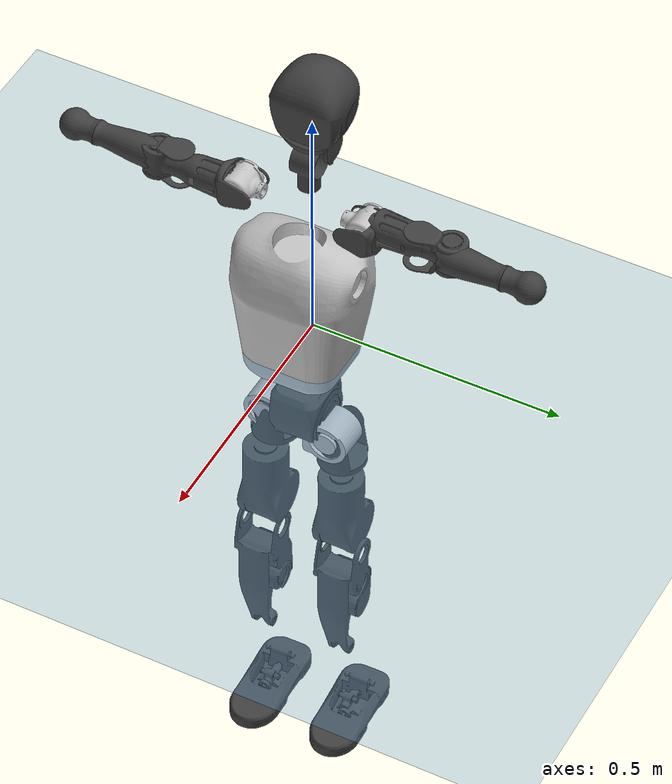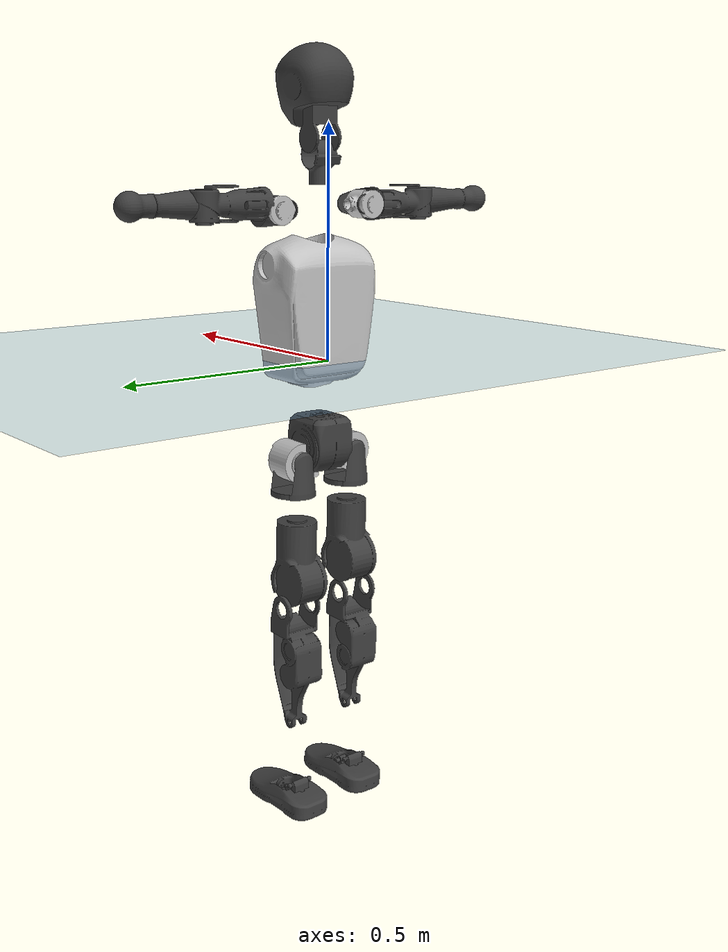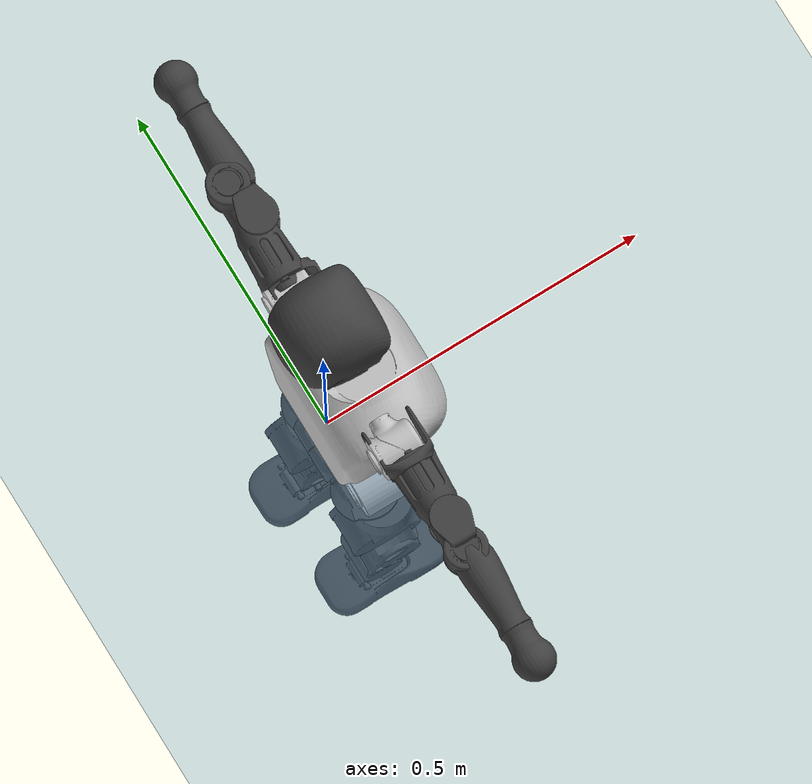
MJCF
<mujoco model="T1">
  <compiler angle="radian" assetdir="assets" balanceinertia="true" inertiafromgeom="false"/>

  <option timestep="0.005" density="1.2" viscosity="2e-05"/>

  <size nkey="1"/>

  <visual>
    <quality shadowsize="8192"/>
    <map shadowclip="0.5"/>
  </visual>

  <default>
    <default class="/">
      <joint armature="0.01" damping="0.01" frictionloss="0.1"/>
      <geom contype="0" conaffinity="0" group="1" solref="-1000 -80"/>
      <site size="0.01 0.005 0.005" group="5"/>
      <general forcelimited="true" biastype="affine" gainprm="25" biasprm="0 -25 -0.6"/>
      <default class="t1">
        <geom rgba="0.25 0.25 0.25 1"/>
        <default class="visual">
          <geom type="mesh" group="2"/>
        </default>
        <default class="collision">
          <geom group="3"/>
        </default>
        <default class="foot">
          <geom size="0.1115 0.05 0.015" type="box" condim="6" group="4" priority="1" solimp="0.015 1 0.015"/>
        </default>
        <default class="reward_collision_sphere">
          <geom group="5" rgba="1 0 0 1"/>
        </default>
      </default>
    </default>
  </default>

  <asset>
    <texture type="skybox" colorspace="auto" name="//unnamed_texture_0" builtin="gradient" rgb1="0.95 0.95 0.95" rgb2="0.95 0.95 0.95" width="100" height="600"/>
    <texture type="2d" colorspace="auto" name="texplane" builtin="checker" rgb1="0.345 0.575 0.748" rgb2="0.345 0.575 0.748" markrgb="1 1 1" width="512" height="512"/>
    <material name="MatPlane" class="/" texture="texplane" texuniform="true" texrepeat="2 2" specular="0.9"/>
    <mesh name="Trunk" class="/" file="Trunk.stl"/>
    <mesh name="H1" class="/" file="H1.stl"/>
    <mesh name="H2" class="/" file="H2.stl"/>
    <mesh name="AL1" class="/" file="AL1.stl"/>
    <mesh name="AL2" class="/" file="AL2.stl"/>
    <mesh name="AL3" class="/" file="AL3.stl"/>
    <mesh name="left_hand_link" class="/" file="left_hand_link.stl"/>
    <mesh name="AR1" class="/" file="AR1.stl"/>
    <mesh name="AR2" class="/" file="AR2.stl"/>
    <mesh name="AR3" class="/" file="AR3.stl"/>
    <mesh name="right_hand_link" class="/" file="right_hand_link.stl"/>
    <mesh name="Waist" class="/" file="Waist.stl"/>
    <mesh name="Hip_Pitch_Left" class="/" file="Hip_Pitch_Left.stl"/>
    <mesh name="Hip_Roll_Left" class="/" file="Hip_Roll_Left.stl"/>
    <mesh name="Hip_Yaw_Left" class="/" file="Hip_Yaw_Left.stl"/>
    <mesh name="Shank_Left" class="/" file="Shank_Left.stl"/>
    <mesh name="Ankle_Cross_Left" class="/" file="Ankle_Cross_Left.stl"/>
    <mesh name="left_foot_link" class="/" file="left_foot_link.stl"/>
    <mesh name="Hip_Pitch_Right" class="/" file="Hip_Pitch_Right.stl"/>
    <mesh name="Hip_Roll_Right" class="/" file="Hip_Roll_Right.stl"/>
    <mesh name="Hip_Yaw_Right" class="/" file="Hip_Yaw_Right.stl"/>
    <mesh name="Shank_Right" class="/" file="Shank_Right.stl"/>
    <mesh name="Ankle_Cross_Right" class="/" file="Ankle_Cross_Right.stl"/>
    <mesh name="right_foot_link" class="/" file="right_foot_link.stl"/>
  </asset>

  <worldbody>
    <geom name="floor" class="/" size="100 100 0.125" type="plane" group="0" material="MatPlane"/>
    <light name="toplight_shadow" class="/" pos="0 0 5" dir="0.0990148 0.0990148 -0.990148" type="directional" ambient="0.04 0.04 0.04" diffuse="0.55 0.55 0.55" specular="0.12 0.12 0.12"/>
    <light name="toplight_fill" class="/" pos="0 0 5" dir="0.0990148 0.0990148 -0.990148" type="directional" castshadow="false" ambient="0.04 0.04 0.04" diffuse="0.3 0.3 0.3" specular="0.08 0.08 0.08"/>
    <body name="trunk" childclass="t1" pos="-0.00176571 0.00341212 -0.0105506" quat="0.999994 -0.000290447 -0.00174763 -0.00295218">
      <inertial pos="0.0342796 0.00982364 0.156454" quat="0.999953 0.00108072 -0.00957733 0.000913618" mass="9.35411" diaginertia="0.0014403 0.012855 0.473253"/>
      <joint name="//unnamed_joint_0" type="free" armature="0" damping="0" frictionloss="0"/>
      <geom name="//unnamed_geom_1" class="visual" rgba="0.76 0.76 0.76 1" mesh="Trunk"/>
      <geom name="//unnamed_geom_2" class="collision" size="0.0673443 0.0897924 0.134689" pos="0.0269258 0 0.186545" type="box"/>
      <geom name="//unnamed_geom_3" class="reward_collision_sphere" size="0.103261" pos="0.0269258 0 0.155454"/>
      <geom name="//unnamed_geom_4" class="reward_collision_sphere" size="0.0134689" pos="0.0269258 0.0586901 0"/>
      <geom name="//unnamed_geom_5" class="reward_collision_sphere" size="0.0134689" pos="0.0269258 -0.0586901 0"/>
      <geom name="//unnamed_geom_6" class="reward_collision_sphere" size="0.0134689" pos="0.0269258 0.0738804 0.279817"/>
      <geom name="//unnamed_geom_7" class="reward_collision_sphere" size="0.0134689" pos="0.0269258 -0.0738804 0.279817"/>
      <site name="imu" pos="0.0738428 -0.0758861 0.0726849" size="0.00897924"/>
      <camera name="track" pos="0 -1.38094 0" quat="0.707107 0.707107 0 0" mode="trackcom"/>
      <camera name="ego_camera" pos="0.054749 0 0.652906" quat="-0.5 -0.5 0.5 0.5"/>
      <body name="H1" pos="0.0279028 0.00343602 0.383606" quat="0.999974 -0.00553582 -0.00400932 -0.00232768">
        <inertial pos="-0.000910043 -0.004297 0.0827323" quat="0.770293 -0.0282465 -0.000702451 0.637063" mass="0.215235" diaginertia="4.21218e-06 2.7074e-05 0.00113127"/>
        <joint name="AAHead_yaw" pos="0 0 0" axis="0.0209349 0.041335 0.998926" stiffness="0.0223323" range="-1.63318 1.58492" armature="0.00161799" damping="0.0604282" frictionloss="0.0877508"/>
        <geom name="//unnamed_geom_8" class="visual" mesh="H1"/>
        <body name="H2" pos="-0.0165173 0.00945073 0.0962634" quat="0.999991 -0.00172027 -0.00354325 0.00161281">
          <inertial pos="0.00342795 -0.00343706 0.155123" quat="0.98532 0.123066 -0.0844793 -0.0828398" mass="0.488054" diaginertia="3.66157e-05 0.000308604 0.0138873"/>
          <joint name="Head_pitch" pos="0 0 0" axis="0.0175649 -0.998523 -0.0514195" range="-1.137 0.541929" armature="0.0064073" damping="0.0411365" frictionloss="0.104019"/>
          <geom name="//unnamed_geom_9" class="visual" mesh="H2"/>
          <geom name="//unnamed_geom_10" class="collision" size="0.0718339" pos="0.00448763 0 0.170999"/>
          <geom name="//unnamed_geom_11" class="reward_collision_sphere" size="0.0808131" pos="0.00897525 0 0.155454"/>
        </body>
      </body>
      <body name="AL1" pos="0.0261958 0.0729732 0.334636" quat="0.999984 -0.00361339 -0.00281523 -0.00326545">
        <inertial pos="0.000168233 0.0182227 0.000166857" quat="0.511611 0.490221 -0.491433 0.506391" mass="0.376555" diaginertia="2.19971e-05 0.000222112 0.00291515"/>
        <joint name="Left_Shoulder_Pitch" pos="0 0 0" axis="-0.00275928 0.999988 0.00406494" stiffness="0.0342106" range="-3.45651 1.27693" armature="0.0113558" damping="0" frictionloss="0.13494"/>
        <geom name="//unnamed_geom_12" class="visual" rgba="0.76 0.76 0.76 1" mesh="AL1"/>
        <body name="AL2" pos="0.0124719 0.0239279 0.000100945" quat="1 0.000223158 5.82876e-05 -2.99136e-05">
          <inertial pos="0.00028575 0.0315115 -0.0134812" quat="0.483615 0.517239 -0.490366 0.508057" mass="0.0836628" diaginertia="6.31751e-06 5.51459e-05 0.00123791"/>
          <joint name="Left_Shoulder_Roll" pos="0 0 0" axis="-0.999393 -0.0284841 0.0200593" range="-1.86366 1.45169" armature="0.0148922" damping="0.055829" frictionloss="0.0938034"/>
          <geom name="//unnamed_geom_13" class="visual" mesh="AL2"/>
          <body name="AL3" pos="-0.0101805 0.0434576 0.0130868" quat="0.999999 0.000878187 -0.00141799 0.000114874">
            <inertial pos="-0.010254 0.0589465 -0.00108202" quat="0.709831 0.703128 -0.00626782 0.0413734" mass="0.831938" diaginertia="0.000287889 0.00189123 0.00727402"/>
            <joint name="Left_Elbow_Pitch" pos="0 0 0" axis="-0.077863 -0.996858 -0.0145503" stiffness="0.0766894" range="-2.56586 2.02293" armature="0.016287" damping="0.0902477" frictionloss="0.139559"/>
            <geom name="//unnamed_geom_14" class="visual" mesh="AL3"/>
            <geom name="//unnamed_geom_15" class="collision" size="0.0269377 0.0673443" pos="0 0.0345236 0" quat="0.707105 0.707108 0 0" type="cylinder"/>
            <geom name="//unnamed_geom_16" class="reward_collision_sphere" size="0.0323253"/>
            <body name="left_hand_link" pos="0.0123093 0.0899448 0.00202096" quat="0.999992 0.00239365 0.00295238 -0.00141901">
              <inertial pos="0.00360848 0.0719445 -0.00820118" quat="0.706402 0.707809 -0.00175858 -0.000154908" mass="0.235654" diaginertia="0.000128496 0.00109534 0.00197349"/>
              <joint name="Left_Elbow_Yaw" pos="0 0 0" axis="-0.0386737 -0.0349857 0.998639" stiffness="0.027149" range="-2.27433 -0.0442409" armature="0.00172504" damping="0" frictionloss="0.132284"/>
              <geom name="//unnamed_geom_17" class="visual" mesh="left_hand_link"/>
              <geom name="//unnamed_geom_18" class="collision" size="0.0269377 0.0785683" pos="0 0.0897613 0" quat="0.707105 0.707108 0 0" type="cylinder"/>
              <geom name="//unnamed_geom_19" class="reward_collision_sphere" size="0.0448962"/>
              <geom name="//unnamed_geom_20" class="reward_collision_sphere" size="0.0314273" pos="0 0.0759518 0"/>
              <geom name="//unnamed_geom_21" class="reward_collision_sphere" size="0.0314273" pos="0 0.148451 0"/>
            </body>
          </body>
        </body>
      </body>
      <body name="AR1" pos="0.0385129 -0.0823969 0.339888" quat="0.999999 0.0006762 0.00119032 -0.000742194">
        <inertial pos="0.0139754 -0.0383098 -0.011128" quat="0.471879 0.47396 -0.570848 0.476261" mass="0.335813" diaginertia="2.70354e-05 0.000220836 0.00212603"/>
        <joint name="Right_Shoulder_Pitch" pos="0 0 0" axis="0.0016339 -0.999998 0.000927985" range="-1.21393 3.32443" armature="0.00895876" damping="0" frictionloss="0.139148"/>
        <geom name="//unnamed_geom_22" class="visual" rgba="0.76 0.76 0.76 1" mesh="AR1"/>
        <body name="AR2" pos="0.00553984 -0.0259117 0.000818237" quat="0.999995 -0.00231447 0.00133181 -0.00173964">
          <inertial pos="-0.00409043 -0.0296664 -0.00801307" quat="0.509485 0.491678 -0.511135 0.487256" mass="0.11856" diaginertia="7.05937e-06 4.47799e-05 0.00141128"/>
          <joint name="Right_Shoulder_Roll" pos="0 0 0" axis="-0.999358 -0.0351454 0.00701496" stiffness="0.015708" range="-1.91456 1.26648" armature="0.0136249" damping="0" frictionloss="0.0729406"/>
          <geom name="//unnamed_geom_23" class="visual" mesh="AR2"/>
          <body name="AR3" pos="0.00270727 -0.0380018 -0.00289618" quat="1 -4.83054e-06 -0.000141325 -0.000425381">
            <inertial pos="-0.00130337 -0.0444491 -0.0121224" quat="0.694301 0.717673 0.010477 0.0527463" mass="0.691999" diaginertia="0.000209636 0.00229553 0.00480001"/>
            <joint name="Right_Elbow_Pitch" pos="0 0 0" axis="0.0384527 0.999178 -0.0128695" range="-2.46475 2.49683" armature="0.00830387" damping="0" frictionloss="0.0936586"/>
            <geom name="//unnamed_geom_24" class="visual" mesh="AR3"/>
            <geom name="//unnamed_geom_25" class="collision" size="0.0269377 0.0673443" pos="0 -0.0345236 0" quat="0.707105 0.707108 0 0" type="cylinder"/>
            <geom name="//unnamed_geom_26" class="reward_collision_sphere" size="0.0323253"/>
            <body name="right_hand_link" pos="0.00312315 -0.101397 0.00492478" quat="0.999992 0.000543412 0.00342838 -0.00182439">
              <inertial pos="-0.000544056 -0.0719073 0.0133133" quat="0.71242 0.70168 0.00971513 -0.00293328" mass="0.258523" diaginertia="0.000139926 0.00128093 0.00223537"/>
              <joint name="Right_Elbow_Yaw" pos="0 0 0" axis="0.0122035 0.00931013 0.999882" range="-0.069727 2.43433" armature="0.00838962" damping="0.033958" frictionloss="0.042206"/>
              <geom name="//unnamed_geom_27" class="visual" mesh="right_hand_link"/>
              <geom name="//unnamed_geom_28" class="collision" size="0.0269377 0.0785683" pos="0 -0.0897613 0" quat="0.707105 0.707108 0 0" type="cylinder"/>
              <geom name="//unnamed_geom_29" class="reward_collision_sphere" size="0.0448962"/>
              <geom name="//unnamed_geom_30" class="reward_collision_sphere" size="0.0314273" pos="0 -0.0759518 0"/>
              <geom name="//unnamed_geom_31" class="reward_collision_sphere" size="0.0314273" pos="0 -0.148451 0"/>
            </body>
          </body>
        </body>
      </body>
      <body name="Waist" pos="0.0291938 -0.0035771 -0.17928" quat="0.999989 0.0039646 -0.00265185 0.00020426">
        <inertial pos="0.018021 -0.0112654 0.0107346" quat="0.984559 -0.00815756 -0.174444 0.0120637" mass="2.1703" diaginertia="0.00012629 0.00095962 0.0416416"/>
        <joint name="Waist" pos="0 0 0" axis="0.00366421 0.0752697 0.997156" range="-1.69875 1.70337" armature="0.0126904" damping="0" frictionloss="0.0919682"/>
        <geom name="//unnamed_geom_32" class="visual" mesh="Waist"/>
        <body name="Hip_Pitch_Left" pos="0.0139084 0.0636724 -0.0110767" quat="0.999965 0.00350321 -0.000575129 -0.00759025">
          <inertial pos="0.012495 -0.019923 -0.0275142" quat="0.975343 0.219976 0.015551 0.00870504" mass="0.789218" diaginertia="3.87444e-05 0.000290619 0.0110189"/>
          <joint name="Left_Hip_Pitch" pos="0 0 0" axis="0.0231375 0.999282 -0.0300152" range="-1.69776 1.53576" armature="0.0148873" damping="0.0115301" frictionloss="0.0210462"/>
          <geom name="//unnamed_geom_33" class="visual" rgba="0.76 0.76 0.76 1" mesh="Hip_Pitch_Left"/>
          <body name="Hip_Roll_Left" pos="-0.016521 0.0110846 -0.0145373" quat="0.999966 -0.00220092 -0.000660973 0.00796621">
            <inertial pos="-0.00956053 0.00774427 -0.0690437" quat="0.709554 0.00742862 -0.00594776 0.704586" mass="0.292083" diaginertia="3.10381e-05 0.000214899 0.00437952"/>
            <joint name="Left_Hip_Roll" pos="0 0 0" axis="-0.999705 -0.0173902 0.0169752" range="-1.56825 0.175063" armature="0.00460774" damping="0" frictionloss="0.0936713"/>
            <geom name="//unnamed_geom_34" class="visual" mesh="Hip_Roll_Left"/>
            <geom name="//unnamed_geom_35" class="reward_collision_sphere" size="0.0493858"/>
            <body name="Hip_Yaw_Left" pos="-0.00821413 -0.00637202 -0.13632" quat="0.999997 -0.00229088 -0.00023059 0.000342552">
              <inertial pos="-0.00445864 -0.0165065 -0.153078" quat="0.67912 -0.0271126 -0.0186528 0.733289" mass="1.69437" diaginertia="0.000508934 0.00431407 0.0242045"/>
              <joint name="Left_Hip_Yaw" pos="0 0 0" axis="0.0310701 0.0121135 -0.999444" range="-1.00037 1.01652" armature="0.00906437" damping="0.0211538" frictionloss="0.0428007"/>
              <geom name="//unnamed_geom_36" class="visual" mesh="Hip_Yaw_Left"/>
              <geom name="//unnamed_geom_37" class="collision" size="0.0448962 0.0718339" type="cylinder"/>
              <body name="Shank_Left" pos="-0.00524714 0.00235463 -0.19847" quat="0.999981 -0.00484118 -0.000642721 0.00369581">
                <inertial pos="-0.00315643 0.0110826 -0.200801" quat="0.996431 0.0679354 -0.0134617 0.048251" mass="1.40077" diaginertia="0.000665369 0.00509719 0.0178186"/>
                <joint name="Left_Knee_Pitch" pos="0 0 0" axis="-0.0311302 0.999514 0.00189093" range="0.00400441 2.6014" armature="0.00319535" damping="0.0444243" frictionloss="0.0926981"/>
                <geom name="//unnamed_geom_38" class="visual" mesh="Shank_Left"/>
                <geom name="//unnamed_geom_39" class="collision" size="0.0448962 0.0673443" pos="0 0 -0.186545" type="cylinder"/>
                <geom name="//unnamed_geom_40" class="reward_collision_sphere" size="0.058365"/>
                <body name="Ankle_Cross_Left" pos="-0.00871726 0.0121203 -0.439359" quat="0.999992 -0.000291771 0.00283223 0.0026356">
                  <inertial pos="0.00213292 -0.000828634 -0.0188178" quat="0.48208 0.509672 0.54768 0.455939" mass="0.0553932" diaginertia="4.18896e-07 3.78343e-06 9.50574e-05"/>
                  <joint name="Left_Ankle_Pitch" pos="0 0 0" axis="0.00267353 0.999994 0.00241059" range="-0.569644 0.0509668" armature="0.00471756" damping="0.0882201" frictionloss="0.0459762"/>
                  <geom name="//unnamed_geom_41" class="visual" mesh="Ankle_Cross_Left"/>
                  <body name="left_foot_link" pos="0.00931645 0.00925794 -0.00520719" quat="0.999972 -9.83883e-05 0.00515414 0.00549384">
                    <inertial pos="0.00506426 -0.0046823 -0.0163737" quat="-0.0591691 0.612555 0.00705066 0.788179" mass="0.390844" diaginertia="4.25603e-05 0.000290144 0.0124761"/>
                    <joint name="Left_Ankle_Roll" pos="0 0 0" axis="-0.997833 0.0596805 -0.0277125" range="-0.47766 0.132123" armature="0.00790434" damping="0.00391774" frictionloss="0.013713"/>
                    <geom name="//unnamed_geom_42" class="visual" mesh="left_foot_link"/>
                    <geom name="left_foot" class="foot" size="0.0860701 0.0641582 0.00494255" pos="0.00448763 0 -0.0233181"/>
                    <geom name="//unnamed_geom_44" class="reward_collision_sphere" size="0.046692" pos="0.00448763 0 -0.0233181"/>
                    <geom name="//unnamed_geom_45" class="reward_collision_sphere" size="0.0269377" pos="0.0426324 -0.0158808 -0.0233181"/>
                    <geom name="//unnamed_geom_46" class="reward_collision_sphere" size="0.0269377" pos="-0.0314134 -0.0158808 -0.0233181"/>
                    <site name="left_foot" class="foot" pos="0.00448763 0 -0.0233181" size="0.00897924"/>
                  </body>
                </body>
              </body>
            </body>
          </body>
        </body>
        <body name="Hip_Pitch_Right" pos="0.00258541 -0.0696016 0.00173379" quat="0.999998 -0.00165782 -0.000136488 -0.000659111">
          <inertial pos="0.00786344 0.00497525 -0.019736" quat="0.973161 -0.211587 0.09037 -0.00473802" mass="0.968091" diaginertia="3.90102e-05 0.000245095 0.0147354"/>
          <joint name="Right_Hip_Pitch" pos="0 0 0" axis="0.0246762 -0.999678 0.005948" range="-1.61141 1.98268" armature="0.00505025" damping="0" frictionloss="0.0886739"/>
          <geom name="//unnamed_geom_47" class="visual" rgba="0.76 0.76 0.76 1" mesh="Hip_Pitch_Right"/>
          <body name="Hip_Roll_Right" pos="-0.00945788 0.00293818 -0.0169955" quat="0.999998 -0.00105575 0.000953399 0.00131286">
            <inertial pos="0.00376726 -0.0105928 -0.0833923" quat="0.694127 0.00798327 0.0475308 0.718237" mass="0.300642" diaginertia="2.91451e-05 0.00021787 0.00510784"/>
            <joint name="Right_Hip_Roll" pos="0 0 0" axis="-0.999657 0.0184046 -0.0186323" stiffness="0.0833234" range="-0.11602 1.56726" armature="0.0136552" damping="0.00403486" frictionloss="0.089754"/>
            <geom name="//unnamed_geom_48" class="visual" mesh="Hip_Roll_Right"/>
            <geom name="//unnamed_geom_49" class="reward_collision_sphere" size="0.0493858"/>
            <body name="Hip_Yaw_Right" pos="0.0134144 -0.0161459 -0.123593" quat="1 -0.000327404 0.000346078 0.000198198">
              <inertial pos="0.00869552 6.92906e-05 -0.123097" quat="0.755748 -0.039455 -0.0269296 0.653118" mass="1.24385" diaginertia="0.000435266 0.00360878 0.0213684"/>
              <joint name="Right_Hip_Yaw" pos="0 0 0" axis="-0.0202204 -0.00107583 -0.999795" stiffness="0.0304944" range="-1.27118 1.18934" armature="0.00765156" damping="0.0297596" frictionloss="0.0859545"/>
              <geom name="//unnamed_geom_50" class="visual" mesh="Hip_Yaw_Right"/>
              <geom name="//unnamed_geom_51" class="collision" size="0.0448962 0.0718339" type="cylinder"/>
              <body name="Shank_Right" pos="-0.0103273 -0.0115758 -0.219726" quat="1 -1.0028e-05 3.66436e-06 -4.78392e-05">
                <inertial pos="-0.0195398 -0.00378189 -0.182815" quat="0.999219 0.0352872 0.0175461 0.00279505" mass="1.70768" diaginertia="0.0007463 0.00530075 0.020482"/>
                <joint name="Right_Knee_Pitch" pos="0 0 0" axis="-0.0206833 -0.99818 -0.0566447" range="-2.30849 -0.0986205" armature="0.00494282" damping="0.0505997" frictionloss="0.0358064"/>
                <geom name="//unnamed_geom_52" class="visual" mesh="Shank_Right"/>
                <geom name="//unnamed_geom_53" class="collision" size="0.0448962 0.0673443" pos="0 0 -0.186545" type="cylinder"/>
                <geom name="//unnamed_geom_54" class="reward_collision_sphere" size="0.058365"/>
                <body name="Ankle_Cross_Right" pos="0.00896925 0.0153776 -0.431935" quat="0.999973 0.00277163 0.00630622 -0.00254879">
                  <inertial pos="0.002802 0.000933481 -0.00882501" quat="0.440163 0.549432 0.554921 0.443219" mass="0.0523152" diaginertia="6.23226e-07 4.03785e-06 0.000112385"/>
                  <joint name="Right_Ankle_Pitch" pos="0 0 0" axis="0.0228167 -0.999334 -0.0284933" range="-0.181477 0.561092" armature="0.00993197" damping="0" frictionloss="0.0875748"/>
                  <geom name="//unnamed_geom_55" class="visual" mesh="Ankle_Cross_Right"/>
                  <body name="right_foot_link" pos="-0.00183017 0.00027358 -0.00846381" quat="0.999981 0.00546387 0.00207951 0.00180116">
                    <inertial pos="0.0119552 0.00438279 -0.0148764" quat="-0.024263 0.61961 0.0192858 0.784298" mass="0.504741" diaginertia="5.88569e-05 0.000428805 0.0217644"/>
                    <joint name="Right_Ankle_Roll" pos="0 0 0" axis="-0.999982 -0.00316058 0.00519713" range="-0.630184 0.611534" armature="0.00646385" damping="0" frictionloss="0.0671879"/>
                    <geom name="//unnamed_geom_56" class="visual" mesh="right_foot_link"/>
                    <geom name="right_foot" class="foot" size="0.101203 0.0605879 0.0145653" pos="0.00448763 0 -0.0233181"/>
                    <geom name="//unnamed_geom_58" class="reward_collision_sphere" size="0.035917"/>
                    <geom name="//unnamed_geom_59" class="reward_collision_sphere" size="0.0269377" pos="0.00448763 0 -0.0233181"/>
                    <geom name="//unnamed_geom_60" class="reward_collision_sphere" size="0.0269377" pos="0.0426324 0.0158808 -0.0233181"/>
                    <geom name="//unnamed_geom_61" class="reward_collision_sphere" size="0.0269377" pos="-0.0314134 0.0158808 -0.0233181"/>
                    <site name="right_foot" class="foot" pos="0.00448763 0 -0.0233181" size="0.00897924"/>
                  </body>
                </body>
              </body>
            </body>
          </body>
        </body>
      </body>
    </body>
  </worldbody>

  <contact>
    <pair class="/" geom1="floor" geom2="left_foot" name="//unnamed_contact_0"/>
    <pair class="/" geom1="floor" geom2="right_foot" name="//unnamed_contact_1"/>
  </contact>

  <actuator>
    <general name="AAHead_yaw" class="/" joint="AAHead_yaw" forcerange="-7.76058 7.76058" gainprm="30.7849" biasprm="0 -30.7849 -0.581928"/>
    <general name="Head_pitch" class="/" joint="Head_pitch" forcerange="-5.06332 5.06332" gainprm="30.7849" biasprm="0 -30.7849 -0.581928"/>
    <general name="Left_Shoulder_Pitch" class="/" joint="Left_Shoulder_Pitch" forcerange="-14.1805 14.1805" gainprm="30.7849" biasprm="0 -30.7849 -0.581928"/>
    <general name="Left_Shoulder_Roll" class="/" joint="Left_Shoulder_Roll" forcerange="-21.6948 21.6948" gainprm="30.7849" biasprm="0 -30.7849 -0.581928"/>
    <general name="Left_Elbow_Pitch" class="/" joint="Left_Elbow_Pitch" forcerange="-25.464 25.464" gainprm="30.7849" biasprm="0 -30.7849 -0.581928"/>
    <general name="Left_Elbow_Yaw" class="/" joint="Left_Elbow_Yaw" forcerange="-7.9077 7.9077" gainprm="30.7849" biasprm="0 -30.7849 -0.581928"/>
    <general name="Right_Shoulder_Pitch" class="/" joint="Right_Shoulder_Pitch" forcerange="-7.58329 7.58329" gainprm="30.7849" biasprm="0 -30.7849 -0.581928"/>
    <general name="Right_Shoulder_Roll" class="/" joint="Right_Shoulder_Roll" forcerange="-20.6381 20.6381" gainprm="30.7849" biasprm="0 -30.7849 -0.581928"/>
    <general name="Right_Elbow_Pitch" class="/" joint="Right_Elbow_Pitch" forcerange="-16.7614 16.7614" gainprm="30.7849" biasprm="0 -30.7849 -0.581928"/>
    <general name="Right_Elbow_Yaw" class="/" joint="Right_Elbow_Yaw" forcerange="-16.0813 16.0813" gainprm="30.7849" biasprm="0 -30.7849 -0.581928"/>
    <general name="Waist" class="/" joint="Waist" forcerange="-29.3678 29.3678" gainprm="30.7849" biasprm="0 -30.7849 -0.581928"/>
    <general name="Left_Hip_Pitch" class="/" joint="Left_Hip_Pitch" forcerange="-51.667 51.667" gainprm="30.7849" biasprm="0 -30.7849 -0.581928"/>
    <general name="Left_Hip_Roll" class="/" joint="Left_Hip_Roll" forcerange="-12.5796 12.5796" gainprm="30.7849" biasprm="0 -30.7849 -0.581928"/>
    <general name="Left_Hip_Yaw" class="/" joint="Left_Hip_Yaw" forcerange="-42.5744 42.5744" gainprm="30.7849" biasprm="0 -30.7849 -0.581928"/>
    <general name="Left_Knee_Pitch" class="/" joint="Left_Knee_Pitch" forcerange="-84.8457 84.8457" gainprm="30.7849" biasprm="0 -30.7849 -0.581928"/>
    <general name="Left_Ankle_Pitch" class="/" joint="Left_Ankle_Pitch" forcerange="-17.6625 17.6625" gainprm="30.7849" biasprm="0 -30.7849 -0.581928"/>
    <general name="Left_Ankle_Roll" class="/" joint="Left_Ankle_Roll" forcerange="-13.8737 13.8737" gainprm="30.7849" biasprm="0 -30.7849 -0.581928"/>
    <general name="Right_Hip_Pitch" class="/" joint="Right_Hip_Pitch" forcerange="-31.124 31.124" gainprm="30.7849" biasprm="0 -30.7849 -0.581928"/>
    <general name="Right_Hip_Roll" class="/" joint="Right_Hip_Roll" forcerange="-27.5614 27.5614" gainprm="30.7849" biasprm="0 -30.7849 -0.581928"/>
    <general name="Right_Hip_Yaw" class="/" joint="Right_Hip_Yaw" forcerange="-18.0424 18.0424" gainprm="30.7849" biasprm="0 -30.7849 -0.581928"/>
    <general name="Right_Knee_Pitch" class="/" joint="Right_Knee_Pitch" forcerange="-51.4049 51.4049" gainprm="30.7849" biasprm="0 -30.7849 -0.581928"/>
    <general name="Right_Ankle_Pitch" class="/" joint="Right_Ankle_Pitch" forcerange="-26.8355 26.8355" gainprm="30.7849" biasprm="0 -30.7849 -0.581928"/>
    <general name="Right_Ankle_Roll" class="/" joint="Right_Ankle_Roll" forcerange="-13.5594 13.5594" gainprm="30.7849" biasprm="0 -30.7849 -0.581928"/>
  </actuator>

  <sensor>
    <gyro site="imu" name="imu_angular_velocity"/>
    <velocimeter site="imu" name="imu_linear_velocity"/>
    <framelinvel objtype="site" objname="left_foot" name="left_foot_global_linear_velocity"/>
    <framelinvel objtype="site" objname="right_foot" name="right_foot_global_linear_velocity"/>
  </sensor>

  <keyframe>
    <key name="home" qpos="0 0 0.6385 1 0 0 0 0 0 0 1.4 0 -0.4 0 -1.4 0 0.4 0 -0.4 0 0 0.8 -0.4 0 0.4 0 0 -0.8 0.4 0"/>
  </keyframe>
</mujoco>
